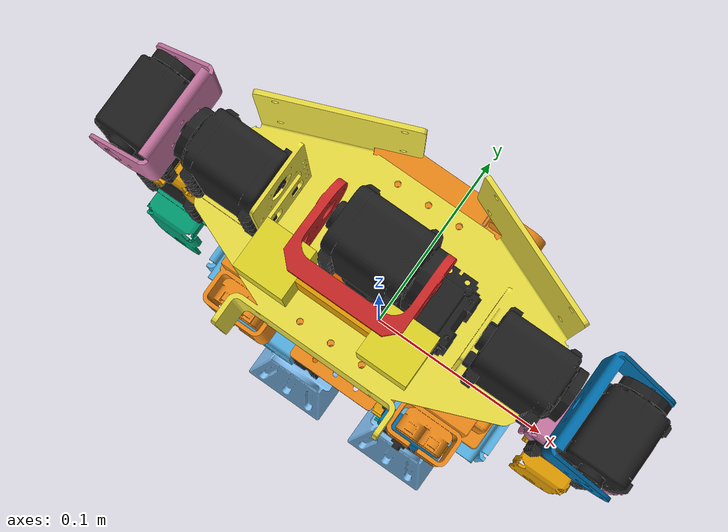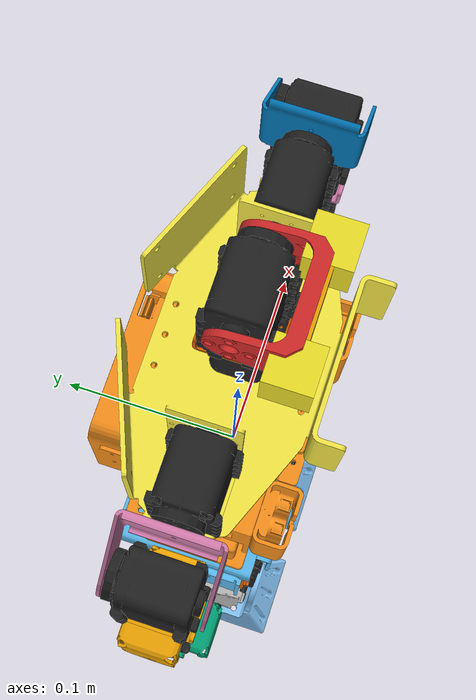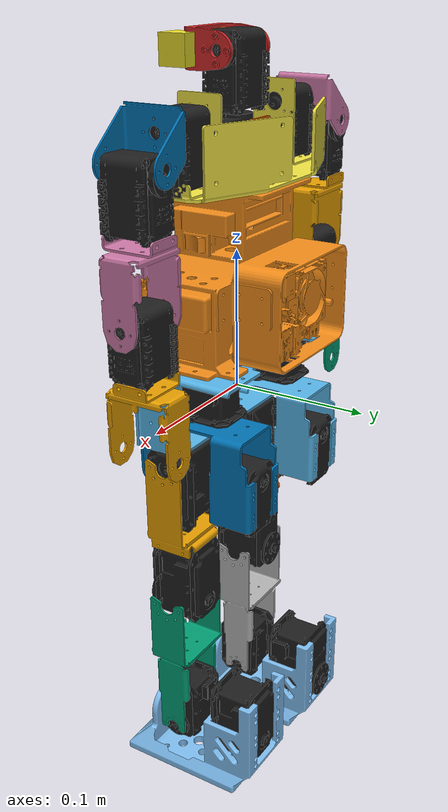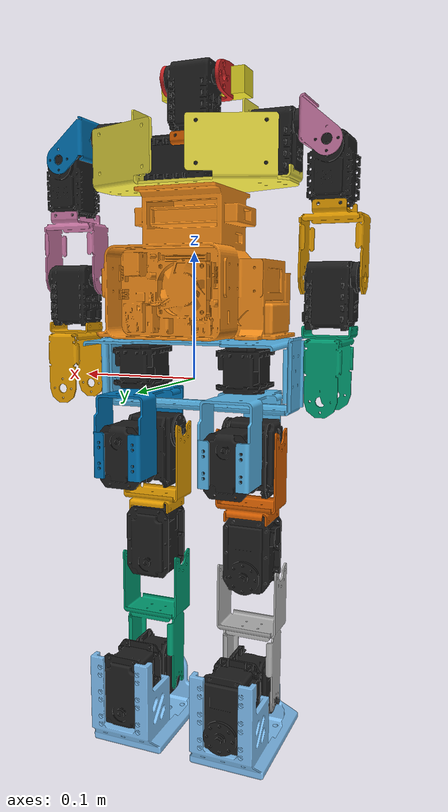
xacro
<?xml version="1.0"?>
<robot name="automi" xmlns:xacro="http://www.ros.org/wiki/xacro">

    <xacro:property name="PI" value="3.1415926535897931"/>

    <xacro:include filename="$(find automi_description)/urdf/dynamixels.urdf.xacro" />
    <xacro:include filename="$(find automi_description)/urdf/torso.urdf.xacro" />
    <xacro:include filename="$(find automi_description)/urdf/arm.urdf.xacro" />
    <xacro:include filename="$(find automi_description)/urdf/leg.urdf.xacro" />
    <xacro:include filename="$(find automi_description)/urdf/transmissions.urdf.xacro" />

    <link name="floating_base">
        <inertial>
            <mass value="0.0005"/>
            <inertia ixx="0.0" ixy="0.0" ixz="0.0" iyy="0.0" iyz="0.0" izz="0.0"/>
        </inertial>
    </link>

    <xacro:torso
        name="body"
        parent="floating_base">
        <origin xyz="0.0 0.0 0.0" rpy="0.0 0.0 0.0"/>
    </xacro:torso>

    <xacro:leg
        name="l"
        parent="body_hip"
        reflect="1">
        <origin xyz="0.045 -0.01 0.01" rpy="0.0 ${PI} 0.0"/>
    </xacro:leg>
    <xacro:leg
        name="r"
        parent="body_hip"
        reflect="-1">
        <origin xyz="-0.045 -0.01 0.01" rpy="0.0 ${PI} 0.0"/>
    </xacro:leg>

    <xacro:arm
        name="r"
        parent="body_chest"
        reflect="-1">
        <origin xyz="-0.065 0.0 0.04" rpy="${PI/2} 0.0 ${3*PI/2}"/>
    </xacro:arm>
    <xacro:arm
        name="l"
        parent="body_chest"
        reflect="1">
        <origin xyz="0.065 0.0 0.04" rpy="${PI/2} 0.0 ${-3*PI/2}"/>
    </xacro:arm>

    <gazebo>
        <plugin filename="libgazebo_ros_control.so" name="gazebo_ros_control">
            <robotNamespace>/automi</robotNamespace>
        </plugin>
    </gazebo>

</robot>

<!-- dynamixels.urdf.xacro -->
<robot xmlns:xacro="http://www.ros.org/wiki/xacro">

    <xacro:macro name="AX18" params="name parent child *p_origin *c_origin">
        <joint name="${name}" type="revolute">
            <xacro:insert_block name="c_origin"/>
            <parent link="${name}_AX18"/>
            <child link ="${child}"/>
            <axis xyz="0 0 1"/>
            <limit
                effort="20.0"
                velocity="12.0"
                lower="-2e16"
                upper="2e16"/>
        </joint>
        <gazebo reference="${name}">
			<provideFeedback>true</provideFeedback>
            <preserveFixedJoint>true</preserveFixedJoint>
		</gazebo>

        <joint name="${name}_dyn_fixed" type="fixed">
            <xacro:insert_block name="p_origin"/>
            <parent link="${parent}"/>
            <child link ="${name}_AX18"/>
            <dynamics damping="0.7"/>
        </joint>
        <gazebo reference="${name}_dyn_fixed">
			<provideFeedback>true</provideFeedback>
            <preserveFixedJoint>true</preserveFixedJoint>
		</gazebo>

        <link name="${name}_AX18">
            <inertial>
                <origin xyz="0 -0.015 0"/>
                <mass value="0.05590"/>
                <inertia ixx="0.0000190991666666667" ixy="0" ixz="0" iyy="0.0000122234666666667" iyz="0" izz="0.0000164159666666667"/>
            </inertial>
            <visual>
                <geometry>
                    <mesh filename="package://automi_description/meshes/AX18.stl"  scale="1e-2 1e-2 1e-2"/>
                </geometry>
            </visual>
            <collision>
                <geometry>
                    <mesh filename="package://automi_description/meshes/AX18.stl"  scale="1e-2 1e-2 1e-2"/>
                </geometry>
            </collision>
        </link>
        <gazebo reference="${name}_AX18">
            <material>
                Gazebo/Black
            </material>
        </gazebo>

    </xacro:macro>

    <xacro:macro name="MX28" params="name parent child *p_origin *c_origin">
        <joint name="${name}" type="revolute">
            <xacro:insert_block name="c_origin"/>
            <parent link="${name}_MX28"/>
            <child link ="${child}"/>
            <axis xyz="0 0 1"/>
            <limit
                effort="20.0"
                velocity="12.0"
                lower="-2e16"
                upper="2e16"/>
        </joint>
        <gazebo reference="${name}">
			<provideFeedback>true</provideFeedback>
            <preserveFixedJoint>true</preserveFixedJoint>
		</gazebo>

        <joint name="${name}_dyn_fixed" type="fixed">
            <xacro:insert_block name="p_origin"/>
            <parent link="${parent}"/>
            <child link ="${name}_MX28"/>
            <dynamics damping="0.7"/>
        </joint>
        <gazebo reference="${name}_dyn_fixed">
			<provideFeedback>true</provideFeedback>
            <preserveFixedJoint>true</preserveFixedJoint>
		</gazebo>

        <link name="${name}_MX28">
            <inertial>
                <origin xyz="0 0.01 0"/>
                <mass value="0.072"/>
                <inertia
                    ixx="0.00002296632" ixy="0" ixz="0"
                    iyy="0.00001520832" iyz="0"
                    izz="0.00002296632"/>
            </inertial>
            <visual>
                <origin xyz="0 0 0" rpy="0.0 0.0 ${PI}"/>
                <geometry>
                    <mesh filename="package://automi_description/meshes/MX28.stl"  scale="1e-2 1e-2 1e-2"/>
                </geometry>
            </visual>
            <collision>
                <origin xyz="0 0 0" rpy="0.0 0.0 ${PI}"/>
                <geometry>
                    <mesh filename="package://automi_description/meshes/MX28.stl"  scale="1e-2 1e-2 1e-2"/>
                </geometry>
            </collision>
        </link>
        <gazebo reference="${name}_MX28">
            <material>
                Gazebo/Black
            </material>
        </gazebo>

    </xacro:macro>

    <xacro:macro name="MX64" params="name parent child *p_origin *c_origin">
        <joint name="${name}" type="revolute">
            <xacro:insert_block name="c_origin"/>
            <parent link="${name}_MX64"/>
            <child link ="${child}"/>
            <axis xyz="0 0 1"/>
            <limit
                effort="20.0"
                velocity="12.0"
                lower="-2e16"
                upper="2e16"/>
        </joint>
        <gazebo reference="${name}">
			<provideFeedback>true</provideFeedback>
            <preserveFixedJoint>true</preserveFixedJoint>
		</gazebo>

        <joint name="${name}_dyn_fixed" type="fixed">
            <xacro:insert_block name="p_origin"/>
            <parent link="${parent}"/>
            <child link ="${name}_MX64"/>
            <dynamics damping="0.7"/>
        </joint>
        <gazebo reference="${name}_dyn_fixed">
			<provideFeedback>true</provideFeedback>
            <preserveFixedJoint>true</preserveFixedJoint>
		</gazebo>

        <link name="${name}_MX64">
            <inertial>
                <origin xyz="0 0.02 0"/>
                <mass value="0.1650"/>
                <inertia
                    ixx="0.0000744453875" ixy="0" ixz="0"
                    iyy="0.0000453343" iyz="0"
                    izz="0.0000735521875"/>
            </inertial>
            <visual>
                <origin xyz="0 0 0" rpy="0.0 ${PI/2} ${PI}"/>
                <geometry>
                    <mesh filename="package://automi_description/meshes/MX64.stl"  scale="1e-2 1e-2 1e-2"/>
                </geometry>
            </visual>
            <collision>
                <origin xyz="0 0 0" rpy="0.0 ${PI/2} ${PI}"/>
                <geometry>
                    <mesh filename="package://automi_description/meshes/MX64.stl"  scale="1e-2 1e-2 1e-2"/>
                </geometry>
            </collision>
        </link>
        <gazebo reference="${name}_MX64">
            <material>
                Gazebo/Black
            </material>
        </gazebo>

    </xacro:macro>

</robot>

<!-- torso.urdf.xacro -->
<robot xmlns:xacro="http://www.ros.org/wiki/xacro">

    <xacro:macro name="torso" params="name parent *origin">
        <joint name="${name}_waist" type="fixed">
            <xacro:insert_block name="origin"/>
            <parent link="${parent}"/>
            <child link="${name}_hip"/>
        </joint>
        <gazebo reference="${name}_waist">
			<provideFeedback>true</provideFeedback>
            <preserveFixedJoint>true</preserveFixedJoint>
		</gazebo>

        <link name="${name}_hip">
            <inertial>
                <origin xyz="0.0 0.0 0.0" rpy="${PI/2} 0.0 ${PI/2}"/>
                <mass value="0.131665"/>
                <inertia ixx="0.000519418268" ixy="0" ixz="0" iyy="0.00048709882" iyz="0" izz="0.000115698856"/>
            </inertial>
            <visual>
                <origin xyz="0.0 0.02 0.045" rpy="${PI/2} 0.0 ${PI/2}"/>
                <geometry>
                    <mesh filename="package://automi_description/meshes/body_hip.stl"  scale="1e-2 1e-2 1e-2"/>
                </geometry>
            </visual>
            <collision>
                <origin xyz="0.0 0.02 0.045" rpy="${PI/2} 0.0 ${PI/2}"/>
                <geometry>
                    <mesh filename="package://automi_description/meshes/body_hip.stl"  scale="1e-2 1e-2 1e-2"/>
                </geometry>
            </collision>
        </link>

        <joint name="${name}_core_j" type="fixed">
        <origin xyz="0.0 0.0 0.075" rpy="0.0 0.0 0.0"/>
            <parent link="${name}_hip"/>
            <child link="${name}_core"/>
        </joint>
        <gazebo reference="${name}_core_j">
			<provideFeedback>true</provideFeedback>
            <preserveFixedJoint>true</preserveFixedJoint>
		</gazebo>

        <link name="${name}_core">
            <inertial>
                <origin xyz="0.0 0.0 0.01" rpy="${PI/2} 0.0 ${PI/2}"/>
                <mass value="1.55086"/>
                <inertia ixx="0.0034367683" ixy="0" ixz="0" iyy="0.00293127768" iyz="0" izz="0.00196796593"/>
            </inertial>
            <visual name="">
                <origin xyz="-0.035 -0.02 -0.02" rpy="${PI/2} 0.0 ${PI/2}"/>
                <geometry>
                    <mesh filename="package://automi_description/meshes/body_core.stl"  scale="1e-2 1e-2 1e-2"/>
                </geometry>
            </visual>
            <collision>
                <origin xyz="-0.035 -0.02 -0.02" rpy="${PI/2} 0.0 ${PI/2}"/>
                <geometry>
                    <mesh filename="package://automi_description/meshes/body_core.stl"  scale="1e-2 1e-2 1e-2"/>
                </geometry>
            </collision>
        </link>

        <joint name="${name}_chest_j" type="fixed">
            <parent link="${name}_core"/>
            <child link="${name}_chest"/>
            <origin xyz="0.0 0.0 0.075" rpy="0.0 0.0 0.0"/>
        </joint>
        <gazebo reference="${name}_chest_j">
			<provideFeedback>true</provideFeedback>
            <preserveFixedJoint>true</preserveFixedJoint>
		</gazebo>

        <link name="${name}_chest">
            <inertial>
                <origin xyz="0.0 0.0 0.02" rpy="${PI/2} 0.0 ${PI/2}"/>
                <mass value="0.128678"/>
                <inertia ixx="0.000284733358" ixy="-1.04236092e-06" ixz="-7.3232262e-07" iyy="0.000360225319" iyz="-6.1818174e-07" izz="0.000135432051"/>
            </inertial>
            <visual name="">
                <origin xyz="-0.02 -0.09 -0.11" rpy="${PI/2} 0.0 ${PI/2}"/>
                <geometry>
                    <mesh filename="package://automi_description/meshes/chest.stl"  scale="1e-2 1e-2 1e-2"/>
                </geometry>
            </visual>
            <collision>
                <origin xyz="-0.02 -0.09 -0.11" rpy="${PI/2} 0.0 ${PI/2}"/>
                <geometry>
                    <mesh filename="package://automi_description/meshes/chest.stl"  scale="1e-2 1e-2 1e-2"/>
                </geometry>
            </collision>
        </link>

        <xacro:AX18
            name="head_pan"
            parent="${name}_chest"
            child="${name}_int_head">
            <origin xyz="0.0 0.0 0.02" rpy="0.0 0.0 ${PI/2}"/>
            <origin xyz="0.0 0.0 0.01" rpy="0.0 0.0 0.0"/>
        </xacro:AX18>

        <link name="${name}_int_head">
            <inertial>
                <mass value="0.00485437"/>
                <inertia ixx="8.2936386e-07" ixy="0" ixz="0" iyy="1.0523979e-06" iyz="0" izz="2.7679914e-07"/>
            </inertial>
            <visual name="">
                <origin xyz="0.0 0.0 0.0" rpy="${PI/2} 0.0 ${PI/2}"/>
                <geometry>
                    <mesh filename="package://automi_description/meshes/Ax18_Frame.stl"  scale="1e-2 1e-2 1e-2"/>
                </geometry>
            </visual>
            <collision>
                <origin xyz="0.0 0.0 0.0" rpy="${PI/2} 0.0 ${PI/2}"/>
                <geometry>
                    <mesh filename="package://automi_description/meshes/Ax18_Frame.stl"  scale="1e-2 1e-2 1e-2"/>
                </geometry>
            </collision>
        </link>

        <xacro:AX18
            name="head_tilt"
            parent="${name}_int_head"
            child="${name}_camera_bracer">
            <origin xyz="0.0 0.0 0.05" rpy="${PI/2} 0.0 0.0"/>
            <origin xyz="-0.00 0.0 0.0" rpy="0.0 0.0 0.0"/>
        </xacro:AX18>

        <link name="${name}_camera_bracer">
            <inertial>
                <origin xyz="-0.01 0.0 0.0" rpy="0.0 ${-PI/2} 0.0"/>
                <mass value="0.0197099"/>
                <inertia ixx="3.31024347e-06" ixy="-8.1e-13" ixz="-8.1e-13" iyy="8.74277118e-06" iyz="-4.4037e-10" izz="7.77454497e-06"/>
            </inertial>
            <visual name="">
                <origin xyz="0.0 0.0 0.0" rpy="0.0 ${-PI/2} 0.0"/>
                <geometry>
                    <mesh filename="package://automi_description/meshes/head.stl"  scale="1e-2 1e-2 1e-2"/>
                </geometry>
            </visual>
            <collision>
                <origin xyz="0.0 0.0 0.0" rpy="0.0 ${-PI/2} 0.0"/>
                <geometry>
                    <mesh filename="package://automi_description/meshes/head.stl"  scale="1e-2 1e-2 1e-2"/>
                </geometry>
            </collision>
        </link>

        <joint name="camera_brace_j" type="fixed">
            <origin xyz="-0.025 0.0 0.0" rpy="0.0 0.0 0.0"/>
            <parent link="${name}_camera_bracer"/>
            <child link="${name}_camera_link"/>
        </joint>
        <gazebo reference="camera_brace_j">
			<provideFeedback>true</provideFeedback>
            <preserveFixedJoint>true</preserveFixedJoint>
		</gazebo>

        <link name="${name}_camera_link">
            <inertial>
                <origin xyz="0.0 0.0 0.0" rpy="0.0 0.0 0.0"/>
                <mass value="0.05"/>
                <inertia ixx="0.0" ixy="0.0" ixz="0.0" iyy="0.0" iyz="0.0" izz="0.0"/>
            </inertial>
            <visual>
                <origin xyz="0.0 0.0 0.0" rpy="0.0 0.0 0.0"/>
                <geometry>
                    <box size="0.005 0.02 0.03"/>
                </geometry>
            </visual>
            <collision>
                <origin xyz="0.0 0.0 0.0" rpy="0.0 0.0 0.0"/>
                <geometry>
                    <box size="0.005 0.02 0.03"/>
                </geometry>
            </collision>
        </link>

        <joint name="${name}_camera_l_j" type="fixed">
            <origin xyz="0.0 0.0 0.025" rpy="${-PI/2} ${PI} 0.0"/>
            <parent link="${name}_camera_link"/>
            <child link="${name}_camera_l"/>
        </joint>
        <gazebo reference="${name}_camera_l_j">
			<provideFeedback>true</provideFeedback>
            <preserveFixedJoint>true</preserveFixedJoint>
		</gazebo>

        <joint name="${name}_camera_r_j" type="fixed">
            <origin xyz="0.0 0.0 -0.025" rpy="${-PI/2} ${PI} 0.0"/>
            <parent link="${name}_camera_link"/>
            <child link="${name}_camera_r"/>
        </joint>
        <gazebo reference="${name}_camera_r_j">
			<provideFeedback>true</provideFeedback>
            <preserveFixedJoint>true</preserveFixedJoint>
		</gazebo>

        <link name="${name}_camera_l">
            <inertial>
                <origin xyz="0.0 0.0 0.0" rpy="0.0 0.0 0.0"/>
                <mass value="0.100"/>
                <inertia ixx="0.0" ixy="0.0" ixz="0.0" iyy="0.0" iyz="0.0" izz="0.0"/>
            </inertial>
            <visual>
                <origin xyz="0.0 0.0 0.0" rpy="0.0 0.0 0.0"/>
                <geometry>
                    <box size="0.02 0.02 0.02"/>
                </geometry>
            </visual>
            <collision>
                <origin xyz="0.0 0.0 0.0" rpy="0.0 0.0 0.0"/>
                <geometry>
                    <box size="0.02 0.02 0.02"/>
                </geometry>
            </collision>
        </link>

        <link name="${name}_camera_r">
            <inertial>
                <origin xyz="0.0 0.0 0.0" rpy="0.0 0.0 0.0"/>
                <mass value="0.1"/>
                <inertia ixx="0.0" ixy="0.0" ixz="0.0" iyy="0.0" iyz="0.0" izz="0.0"/>
            </inertial>
            <visual>
                <origin xyz="0.0 0.0 0.0" rpy="0.0 0.0 0.0"/>
                <geometry>
                    <box size="0.02 0.02 0.02"/>
                </geometry>
            </visual>
            <collision>
                <origin xyz="0.0 0.0 0.0" rpy="0.0 0.0 0.0"/>
                <geometry>
                    <box size="0.02 0.02 0.02"/>
                </geometry>
            </collision>
        </link>

        <gazebo reference="${name}_camera_l">
            <material>
                Gazebo/Yellow
            </material>
            <sensor type="camera" name="camera_l">
            <update_rate>30.0</update_rate>
            <camera name="head">
                <horizontal_fov>1.3962634</horizontal_fov>
                <image>
                <width>800</width>
                <height>800</height>
                <format>R8G8B8</format>
                </image>
                <clip>
                <near>0.02</near>
                <far>300</far>
                </clip>
                <noise>
                <type>gaussian</type>
                <mean>0.0</mean>
                <stddev>0.007</stddev>
                </noise>
            </camera>
            <plugin name="camera_controller" filename="libgazebo_ros_camera.so">
                <alwaysOn>true</alwaysOn>
                <updateRate>0.0</updateRate>
                <cameraName>automi/camera_l</cameraName>
                <imageTopicName>image_raw</imageTopicName>
                <cameraInfoTopicName>camera_info</cameraInfoTopicName>
                <frameName>camera_l</frameName>
                <hackBaseline>0.07</hackBaseline>
                <distortionK1>0.0</distortionK1>
                <distortionK2>0.0</distortionK2>
                <distortionK3>0.0</distortionK3>
                <distortionT1>0.0</distortionT1>
                <distortionT2>0.0</distortionT2>
            </plugin>
            </sensor>
        </gazebo>

        <gazebo reference="${name}_camera_r">
            <material>
                Gazebo/Yellow
            </material>
            <sensor type="camera" name="camera_r">
            <update_rate>30.0</update_rate>
            <camera name="head">
                <horizontal_fov>1.3962634</horizontal_fov>
                <image>
                <width>800</width>
                <height>800</height>
                <format>R8G8B8</format>
                </image>
                <clip>
                <near>0.02</near>
                <far>300</far>
                </clip>
                <noise>
                <type>gaussian</type>
                <mean>0.0</mean>
                <stddev>0.007</stddev>
                </noise>
            </camera>
            <plugin name="camera_controller" filename="libgazebo_ros_camera.so">
                <alwaysOn>true</alwaysOn>
                <updateRate>0.0</updateRate>
                <cameraName>automi/camera_r</cameraName>
                <imageTopicName>image_raw</imageTopicName>
                <cameraInfoTopicName>camera_info</cameraInfoTopicName>
                <frameName>camera_r</frameName>
                <hackBaseline>0.07</hackBaseline>
                <distortionK1>0.0</distortionK1>
                <distortionK2>0.0</distortionK2>
                <distortionK3>0.0</distortionK3>
                <distortionT1>0.0</distortionT1>
                <distortionT2>0.0</distortionT2>
            </plugin>
            </sensor>
        </gazebo>
        <gazebo reference="${name}_camera_bracer">
            <material>
                Gazebo/Red
            </material>
        </gazebo>

        <gazebo reference="${name}_core">
            <material>
                Gazebo/Orange
            </material>
        </gazebo>

    </xacro:macro>

</robot>

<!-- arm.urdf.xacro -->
<robot xmlns:xacro="http://www.ros.org/wiki/xacro">

    <xacro:macro name="arm" params="name parent *origin reflect">
        <xacro:AX18
            name="${name}_shoulder_p"
            parent="${parent}"
            child="${name}_shoulder">
            <xacro:insert_block name="origin"/>
            <origin xyz="0.0 0.0 0.025" rpy="0.0 0.0 ${PI}"/>
        </xacro:AX18>

        <link name="${name}_shoulder">
            <inertial>
                <origin xyz="0.0 0.01 0.01" rpy="0.0 0.0 0.0"/>
                <mass value="0.0114101"/>
                <inertia ixx="2.20572018e-06" ixy="-0" ixz="-6.183e-11" iyy="4.83772068e-06" iyz="-5.6590326e-07" izz="4.41215019e-06"/>
            </inertial>
            <visual name="">
                <origin xyz="0.0 0.0 0.0" rpy="${PI/2} ${PI} 0.0"/>
                <geometry>
                    <mesh filename="package://automi_description/meshes/shoulder.stl"  scale="1e-2 1e-2 1e-2"/>
                </geometry>
            </visual>
            <collision>
                <origin xyz="0.0 0.0 0.0" rpy="${PI/2} ${PI} 0.0"/>
                <geometry>
                    <mesh filename="package://automi_description/meshes/shoulder.stl"  scale="1e-2 1e-2 1e-2"/>
                </geometry>
            </collision>
        </link>

        <xacro:AX18
            name="${name}_shoulder_r"
            parent="${name}_shoulder"
            child="${name}_arm">
            <origin xyz="0.0 0.02 0.02" rpy="0.0 ${reflect*PI/2} ${PI}"/>
            <origin xyz="0.0 0.0 0.0" rpy="0.0 0.0 ${PI}"/>
        </xacro:AX18>

        <link name="${name}_arm">
            <inertial>
                <origin xyz="0.0 0.07 0.0" rpy="0.0 0.0 0.0"/>
                <mass value="0.0217184"/>
                <inertia ixx="8.43192828e-06" ixy="-1.62e-12" ixz="2.16e-12" iyy="8.78536152e-06" iyz="-2.7e-12" izz="1.33461094e-05"/>
            </inertial>
            <visual name="">
                <origin xyz="-0.04 0.04 -0.042" rpy="0.0 0.0 0.0"/>
                <geometry>
                    <mesh filename="package://automi_description/meshes/AX18-hand.stl"  scale="1e-2 1e-2 1e-2"/>
                </geometry>
            </visual>
            <collision>
                <origin xyz="-0.04 0.04 -0.042" rpy="0.0 0.0 0.0"/>
                <geometry>
                    <mesh filename="package://automi_description/meshes/AX18-hand.stl"  scale="1e-2 1e-2 1e-2"/>
                </geometry>
            </collision>
        </link>

        <xacro:AX18
            name="${name}_elbow"
            parent="${name}_arm"
            child="${name}_gripper">
            <origin xyz="0.0 0.09 0.0" rpy="0.0 ${-reflect*PI/2} ${PI}"/>
            <origin xyz="0.0 0.0 0.0" rpy="0.0 0.0 ${PI}"/>
        </xacro:AX18>

        <link name="${name}_gripper">
            <inertial>
                <origin xyz="0.0 0.07 0.0" rpy="0.0 0.0 0.0"/>
                <mass value="0.0217184"/>
                <inertia ixx="8.43192828e-06" ixy="-1.62e-12" ixz="2.16e-12" iyy="8.78536152e-06" iyz="-2.7e-12" izz="1.33461094e-05"/>
            </inertial>
            <visual name="">
                <origin xyz="-0.04 0.04 -0.042" rpy="0.0 0.0 0.0"/>
                <geometry>
                    <mesh filename="package://automi_description/meshes/AX18-hand.stl"  scale="1e-2 1e-2 1e-2"/>
                </geometry>
            </visual>
            <collision>
                <origin xyz="-0.04 0.04 -0.042" rpy="0.0 0.0 0.0"/>
                <geometry>
                    <mesh filename="package://automi_description/meshes/AX18-hand.stl"  scale="1e-2 1e-2 1e-2"/>
                </geometry>
            </collision>
        </link>

    </xacro:macro>

</robot>

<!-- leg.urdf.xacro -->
<robot xmlns:xacro="http://www.ros.org/wiki/xacro">

    <xacro:macro name="leg" params="name *origin parent reflect">
        <!-- LINKS -->
        <xacro:MX28
            name="${name}_hip_y"
            parent="${parent}"
            child="${name}_thigh">
            <xacro:insert_block name="origin"/>
            <origin xyz="0.0 0.0 0.022" rpy="0.0 0.0 0.0"/>
        </xacro:MX28>

        <link name="${name}_thigh">
            <inertial>
                <origin xyz="0.0 0.01 0.03" rpy="${-PI/2} 0.0 ${PI/2}"/>
                <mass value="0.0524686"/>
                <inertia ixx="3.79355686e-05" ixy="1.22736951e-10" ixz="2.4462e-10" iyy="6.47107923e-05" iyz="2.1033e-10" izz="7.72305303e-05"/>
            </inertial>
            <visual name="">
                <origin xyz="-0.02 0.03 0.045" rpy="${-PI/2} 0.0 ${PI/2}"/>
                <geometry>
                    <mesh filename="package://automi_description/meshes/thigh.stl"  scale="1e-2 1e-2 1e-2"/>
                </geometry>
            </visual>
            <collision>
                <origin xyz="-0.02 0.03 0.045" rpy="${-PI/2} 0.0 ${PI/2}"/>
                <geometry>
                    <mesh filename="package://automi_description/meshes/thigh.stl"  scale="1e-2 1e-2 1e-2"/>
                </geometry>
            </collision>
        </link>

        <xacro:MX28
            name="${name}_hip_r"
            parent="${name}_thigh"
            child="${name}_int_hip">
            <origin xyz="0.0 0.042 0.035" rpy="${PI/2} 0.0 0.0"/>
            <origin xyz="0.0 0.0 0.05" rpy="0 0 0.0"/>
        </xacro:MX28>

        <link name="${name}_int_hip">
            <inertial>
                <origin xyz="0.0 0.0 0.0" rpy="0.0 0.0 0.0"/>
                <mass value="0.0005"/>
                <inertia ixx="0.0" ixy="0.0" ixz="0.0" iyy="0.0" iyz="0.0" izz="0.0"/>
            </inertial>
        </link>

        <xacro:MX64
            name="${name}_hip_p"
            parent="${name}_int_hip"
            child="${name}_upper_leg">
            <origin xyz="0.0 0.0 0.0" rpy="0.0 ${PI/2*(1+reflect)} 0.0"/>
            <origin xyz="0.0 0.0 0.0" rpy="${PI/2} 0.0 ${PI/2}"/>
        </xacro:MX64>

        <link name="${name}_upper_leg">
            <inertial>
                <origin xyz="0.03 0.0 0.0" rpy="${PI/2} 0.0 ${PI/2}"/>
                <mass value="0.0308695"/>
                <inertia ixx="2.44928245e-05" ixy="-8.1e-13" ixz="-1.08e-12" iyy="1.5896763e-05" iyz="-1.055808e-10" izz="1.52603879e-05"/>
            </inertial>
            <visual name="">
                <origin xyz="-0.025 -0.03 -0.02" rpy="${PI/2} 0.0 ${PI/2}"/>
                <geometry>
                    <mesh filename="package://automi_description/meshes/upper_leg.stl"  scale="1e-2 1e-2 1e-2"/>
                </geometry>
            </visual>
            <collision>
                <origin xyz="-0.025 -0.03 -0.02" rpy="${PI/2} 0.0 ${PI/2}"/>
                <geometry>
                    <mesh filename="package://automi_description/meshes/upper_leg.stl"  scale="1e-2 1e-2 1e-2"/>
                </geometry>
            </collision>
        </link>

        <xacro:MX64
            name="${name}_knee"
            parent="${name}_upper_leg"
            child="${name}_lower_leg">
            <origin xyz="0.115 0.0 0.0" rpy="0.0 0.0 ${PI/2}"/>
            <origin xyz="0.0 0.0 0.0" rpy="0.0 0.0 0.0"/>
        </xacro:MX64>

        <link name="${name}_lower_leg">
            <inertial>
                <origin xyz="0.0 -0.05 0.0" rpy="${PI/2} 0.0 0.0"/>
                <mass value="0.0387102"/>
                <inertia ixx="4.41099235e-05" ixy="-0" ixz="-5.4e-13" iyy="3.13463693e-05" iyz="-2.8154088e-10" izz="1.91534236e-05"/>
            </inertial>
            <visual name="">
                <origin xyz="0.01 0.0 0.002" rpy="${PI/2} 0.0 0.0"/>
                <geometry>
                    <mesh filename="package://automi_description/meshes/lower_leg.stl"  scale="1e-2 1e-2 1e-2"/>
                </geometry>
            </visual>
            <collision>
                <origin xyz="0.01 0.0 0.002" rpy="${PI/2} 0.0 0.0"/>
                <geometry>
                    <mesh filename="package://automi_description/meshes/lower_leg.stl"  scale="1e-2 1e-2 1e-2"/>
                </geometry>
            </collision>
        </link>

        <xacro:MX28
            name="${name}_ankle_p"
            parent="${name}_lower_leg"
            child="${name}_int_ankle">
            <origin xyz="0.0 -0.115 0.0" rpy="0.0 0 0"/>
            <origin xyz="0.0 0.0 0.0" rpy="0.0 0.0 0.0"/>
        </xacro:MX28>

        <link name="${name}_int_ankle">
            <inertial>
                <origin xyz="0.0 0.0 0.0" rpy="0.0 0.0 0.0"/>
                <mass value="0.0005"/>
                <inertia ixx="0.0" ixy="0.0" ixz="0.0" iyy="0.0" iyz="0.0" izz="0.0"/>
            </inertial>
        </link>

        <xacro:MX64
            name="${name}_ankle_r"
            parent="${name}_int_ankle"
            child="${name}_foot">
            <origin xyz="${reflect*0.05} 0.0 0.0" rpy="0 0 0"/>
            <origin xyz="0.0 0.0 0.0" rpy="0 ${reflect*-PI/2} 0.0"/>
        </xacro:MX64>

        <link name="${name}_foot">
            <inertial>
                <origin xyz="0.0 -0.015 0.03" rpy="0.0 0.0 0.0"/>
                <mass value="0.080"/>
                <inertia ixx="0.000086666666666667" ixy="0.0" ixz="0.0" iyy="0.000104666666666667" iyz="0.0" izz="0.00003"/>
            </inertial>
            <visual name="">
                <origin xyz="0.0 -0.04 0.04" rpy="0.0 ${PI/2} 0.0"/>
                <geometry>
                    <mesh filename="package://automi_description/meshes/foot.stl"  scale="1e-2 1e-2 1e-2"/>
                </geometry>
            </visual>
            <collision>
                <origin xyz="0.0 -0.04 0.04" rpy="0.0 ${PI/2} 0.0"/>
                <geometry>
                    <mesh filename="package://automi_description/meshes/foot.stl"  scale="1e-2 1e-2 1e-2"/>
                </geometry>
            </collision>
        </link>

        <joint name="${name}_foot_base_j" type="fixed">
            <origin xyz="0.0 0.0 0.0" rpy="0.0 0.0 0.0"/>
            <parent link="${name}_foot"/>
            <child link="${name}_foot_base"/>
        </joint>

        <link name="${name}_foot_base">
            <collision>
                <origin xyz="0.0 -0.04 0.03" rpy="0.0 0.0 0.0"/>
                <geometry>
                    <box size="0.08 0.005 0.12"/>
                </geometry>
            </collision>
        </link>

        <gazebo reference="${name}_foot">
            <material>Gazebo/SkyBlue</material>
        </gazebo>
        <gazebo reference="${name}_foot_base">
            <mu1>1</mu1>
            <mu2>1</mu2>
            <kp>0.0</kp>
            <kd>10000.0</kd>
            <minDepth>0.001</minDepth>
            <maxContacts>2</maxContacts>
        </gazebo>

    </xacro:macro>

</robot>
